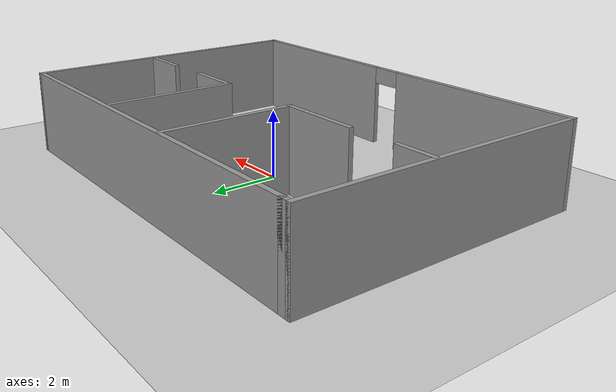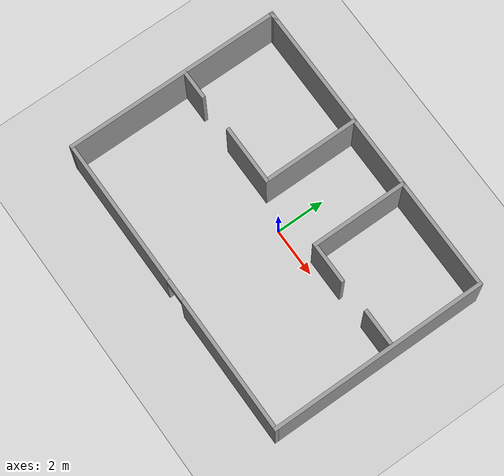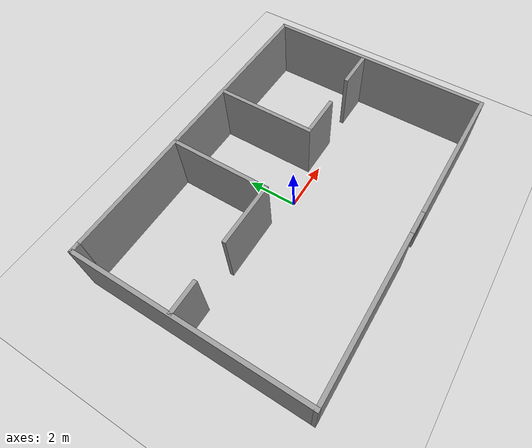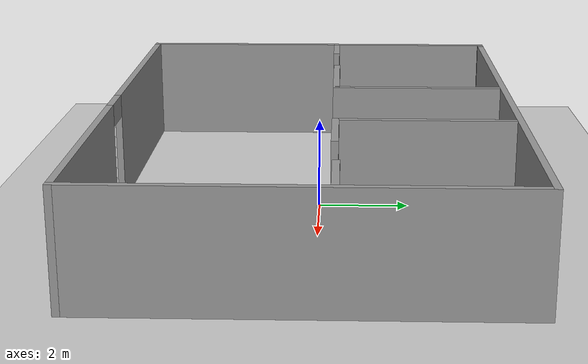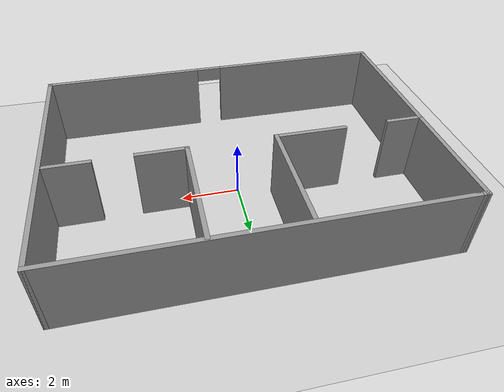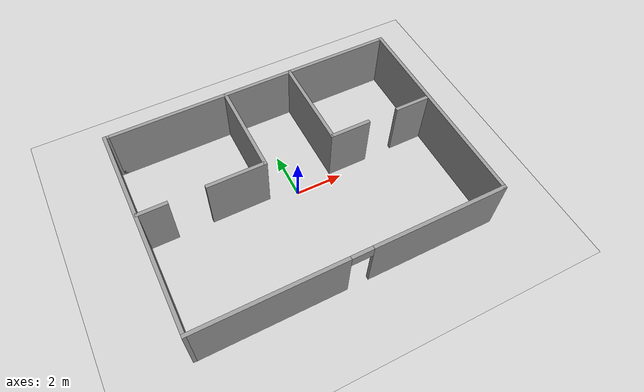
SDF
<sdf version="1.6">
 <world name="default">
  <light name="sun" type="directional">
   <pose>0 0 10 0 -0 0</pose>
   <diffuse>0.8 0.8 0.8 1</diffuse>
   <specular>0.2 0.2 0.2 1</specular>
   <attenuation>
    <range>1000</range>
    <constant>0.9</constant>
    <linear>0.01</linear>
    <quadratic>0.001</quadratic>
   </attenuation>
   <direction>-0.5 0.1 -0.9</direction>
  </light>
  <model name="ground_plane">
   <static>1</static>
   <link name="link">
    <collision name="collision">
     <geometry><plane><normal>0 0 1</normal><size>100 100</size></plane></geometry>
     <surface>
      <contact><collide_bitmask>65535</collide_bitmask></contact>
      <friction><ode><mu>100</mu><mu2>50</mu2></ode></friction>
     </surface>
    </collision>
    <visual name="visual">
     <cast_shadows>0</cast_shadows>
     <geometry><plane><normal>0 0 1</normal><size>100 100</size></plane></geometry>
     <material>
      <script><uri>file://media/materials/scripts/gazebo.material</uri><name>Gazebo/Grey</name></script>
     </material>
    </visual>
   </link>
  </model>
  <gravity>0 0 -9.8</gravity>
  <magnetic_field>6e-06 2.3e-05 -4.2e-05</magnetic_field>
  <atmosphere type="adiabatic"/>
  <physics name="default_physics" default="0" type="ode">
   <max_step_size>0.001</max_step_size>
   <real_time_factor>1</real_time_factor>
   <real_time_update_rate>1000</real_time_update_rate>
  </physics>
  <scene><ambient>0.4 0.4 0.4 1</ambient><background>0.7 0.7 0.7 1</background><shadows>1</shadows></scene>
  <spherical_coordinates>
   <surface_model>EARTH_WGS84</surface_model>
   <latitude_deg>0</latitude_deg>
   <longitude_deg>0</longitude_deg>
   <elevation>0</elevation>
   <heading_deg>0</heading_deg>
  </spherical_coordinates>
  <model name="room">
   <pose>-0.052187 -0.176033 0 0 -0 0</pose>
   <link name="Wall_11">
    <collision name="Wall_11_Collision">
     <geometry><box><size>2.5 0.15 2.5</size></box></geometry>
     <pose>0 0 1.25 0 -0 0</pose>
    </collision>
    <visual name="Wall_11_Visual">
     <pose>0 0 1.25 0 -0 0</pose>
     <geometry><box><size>2.5 0.15 2.5</size></box></geometry>
     <material>
      <script><uri>file://media/materials/scripts/gazebo.material</uri><name>Gazebo/Grey</name></script>
      <ambient>1 1 1 1</ambient>
     </material>
     <meta><layer>0</layer></meta>
    </visual>
    <pose>-2.35115 0.532568 0 0 -0 0</pose>
   </link>
   <link name="Wall_12">
    <collision name="Wall_12_Collision">
     <geometry><box><size>4 0.15 2.5</size></box></geometry>
     <pose>0 0 1.25 0 -0 0</pose>
    </collision>
    <visual name="Wall_12_Visual">
     <pose>0 0 1.25 0 -0 0</pose>
     <geometry><box><size>4 0.15 2.5</size></box></geometry>
     <material>
      <script><uri>file://media/materials/scripts/gazebo.material</uri><name>Gazebo/Grey</name></script>
      <ambient>1 1 1 1</ambient>
     </material>
     <meta><layer>0</layer></meta>
    </visual>
    <pose>-1.17615 2.45757 0 0 -0 1.5708</pose>
   </link>
   <link name="Wall_14">
    <collision name="Wall_14_Collision">
     <geometry><box><size>4 0.15 2.5</size></box></geometry>
     <pose>0 0 1.25 0 -0 0</pose>
    </collision>
    <visual name="Wall_14_Visual">
     <pose>0 0 1.25 0 -0 0</pose>
     <geometry><box><size>4 0.15 2.5</size></box></geometry>
     <material>
      <script><uri>file://media/materials/scripts/gazebo.material</uri><name>Gazebo/Grey</name></script>
      <ambient>1 1 1 1</ambient>
     </material>
     <meta><layer>0</layer></meta>
    </visual>
    <pose>1.76483 2.46855 0 0 -0 -1.5708</pose>
   </link>
   <link name="Wall_15">
    <collision name="Wall_15_Collision">
     <geometry><box><size>1.75 0.15 2.5</size></box></geometry>
     <pose>0 0 1.25 0 -0 0</pose>
    </collision>
    <visual name="Wall_15_Visual">
     <pose>0 0 1.25 0 -0 0</pose>
     <geometry><box><size>1.75 0.15 2.5</size></box></geometry>
     <material>
      <script><uri>file://media/materials/scripts/gazebo.material</uri><name>Gazebo/Grey</name></script>
      <ambient>1 1 1 1</ambient>
     </material>
     <meta><layer>0</layer></meta>
    </visual>
    <pose>2.56483 0.543548 0 0 -0 0</pose>
   </link>
   <link name="Wall_17">
    <collision name="Wall_17_Collision">
     <geometry><box><size>1.5 0.15 2.5</size></box></geometry>
     <pose>0 0 1.25 0 -0 0</pose>
    </collision>
    <visual name="Wall_17_Visual">
     <pose>0 0 1.25 0 -0 0</pose>
     <geometry><box><size>1.5 0.15 2.5</size></box></geometry>
     <material>
      <script><uri>file://media/materials/scripts/gazebo.material</uri><name>Gazebo/Grey</name></script>
      <ambient>1 1 1 1</ambient>
     </material>
     <meta><layer>0</layer></meta>
    </visual>
    <pose>5.46664 0.580234 0 0 -0 0</pose>
   </link>
   <link name="Wall_3">
    <collision name="Wall_3_Collision">
     <geometry><box><size>12.5 0.15 2.5</size></box></geometry>
     <pose>0 0 1.25 0 -0 0</pose>
    </collision>
    <visual name="Wall_3_Visual">
     <pose>0 0 1.25 0 -0 0</pose>
     <geometry><box><size>12.5 0.15 2.5</size></box></geometry>
     <material>
      <script><uri>file://media/materials/scripts/gazebo.material</uri><name>Gazebo/Grey</name></script>
      <ambient>1 1 1 1</ambient>
     </material>
     <meta><layer>0</layer></meta>
    </visual>
    <pose>0.125 4.425 0 0 -0 0</pose>
   </link>
   <link name="Wall_4">
    <collision name="Wall_4_Collision">
     <geometry><box><size>9 0.15 2.5</size></box></geometry>
     <pose>0 0 1.25 0 -0 0</pose>
    </collision>
    <visual name="Wall_4_Visual">
     <pose>0 0 1.25 0 -0 0</pose>
     <geometry><box><size>9 0.15 2.5</size></box></geometry>
     <material>
      <script><uri>file://media/materials/scripts/gazebo.material</uri><name>Gazebo/Grey</name></script>
      <ambient>1 1 1 1</ambient>
     </material>
     <meta><layer>0</layer></meta>
    </visual>
    <pose>6.3 -0 0 0 -0 -1.5708</pose>
   </link>
   <link name="Wall_5">
    <pose>0 -4.425 0 0 -0 3.14159</pose>
    <visual name="Wall_5_Visual_0">
     <pose>-3.53225 0 1.25 0 -0 0</pose>
     <geometry><box><size>5.6855 0.15 2.5</size></box></geometry>
     <material>
      <script><uri>file://media/materials/scripts/gazebo.material</uri><name>Gazebo/Grey</name></script>
      <ambient>1 1 1 1</ambient>
     </material>
     <meta><layer>0</layer></meta>
    </visual>
    <collision name="Wall_5_Collision_0">
     <geometry><box><size>5.6855 0.15 2.5</size></box></geometry>
     <pose>-3.53225 0 1.25 0 -0 0</pose>
    </collision>
    <visual name="Wall_5_Visual_1">
     <pose>3.29275 0 1.25 0 -0 0</pose>
     <geometry><box><size>6.1645 0.15 2.5</size></box></geometry>
     <material>
      <script><uri>file://media/materials/scripts/gazebo.material</uri><name>Gazebo/Grey</name></script>
      <ambient>1 1 1 1</ambient>
     </material>
     <meta><layer>0</layer></meta>
    </visual>
    <collision name="Wall_5_Collision_1">
     <geometry><box><size>6.1645 0.15 2.5</size></box></geometry>
     <pose>3.29275 0 1.25 0 -0 0</pose>
    </collision>
    <visual name="Wall_5_Visual_2">
     <pose>-0.2395 0 2.25 0 -0 0</pose>
     <geometry><box><size>0.9 0.15 0.5</size></box></geometry>
     <material>
      <script><uri>file://media/materials/scripts/gazebo.material</uri><name>Gazebo/Grey</name></script>
      <ambient>1 1 1 1</ambient>
     </material>
     <meta><layer>0</layer></meta>
    </visual>
    <collision name="Wall_5_Collision_2">
     <geometry><box><size>0.9 0.15 0.5</size></box></geometry>
     <pose>-0.2395 0 2.25 0 -0 0</pose>
    </collision>
   </link>
   <link name="Wall_6">
    <collision name="Wall_6_Collision">
     <geometry><box><size>9 0.15 2.5</size></box></geometry>
     <pose>0 0 1.25 0 -0 0</pose>
    </collision>
    <visual name="Wall_6_Visual">
     <pose>0 0 1.25 0 -0 0</pose>
     <geometry><box><size>9 0.15 2.5</size></box></geometry>
     <material>
      <script><uri>file://media/materials/scripts/gazebo.material</uri><name>Gazebo/Grey</name></script>
      <ambient>1 1 1 1</ambient>
     </material>
     <meta><layer>0</layer></meta>
    </visual>
    <pose>-6.3 -0 0 0 -0 1.5708</pose>
   </link>
   <link name="Wall_7">
    <collision name="Wall_7_Collision">
     <geometry><box><size>0.4 0.15 2.5</size></box></geometry>
     <pose>0 0 1.25 0 -0 0</pose>
    </collision>
    <visual name="Wall_7_Visual">
     <pose>0 0 1.25 0 -0 0</pose>
     <geometry><box><size>0.4 0.15 2.5</size></box></geometry>
     <material>
      <script><uri>file://media/materials/scripts/gazebo.material</uri><name>Gazebo/Grey</name></script>
      <ambient>1 1 1 1</ambient>
     </material>
     <meta><layer>0</layer></meta>
    </visual>
    <pose>-6.175 4.425 0 0 -0 0</pose>
   </link>
   <link name="Wall_9">
    <collision name="Wall_9_Collision">
     <geometry><box><size>1.25 0.15 2.5</size></box></geometry>
     <pose>0 0 1.25 0 -0 0</pose>
    </collision>
    <visual name="Wall_9_Visual">
     <pose>0 0 1.25 0 -0 0</pose>
     <geometry><box><size>1.25 0.15 2.5</size></box></geometry>
     <material>
      <script><uri>file://media/materials/scripts/gazebo.material</uri><name>Gazebo/Grey</name></script>
      <ambient>1 1 1 1</ambient>
     </material>
     <meta><layer>0</layer></meta>
    </visual>
    <pose>-5.69313 0.508735 0 0 -0 0</pose>
   </link>
   <static>1</static>
  </model>
 </world>
</sdf>
